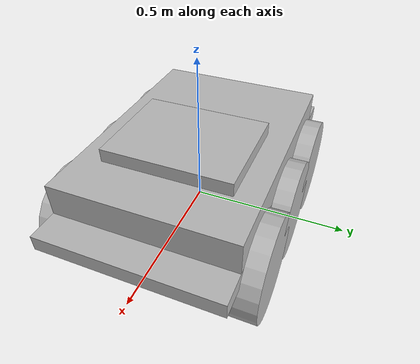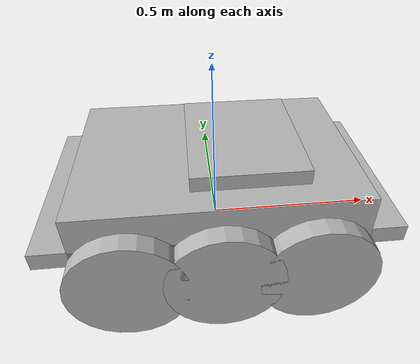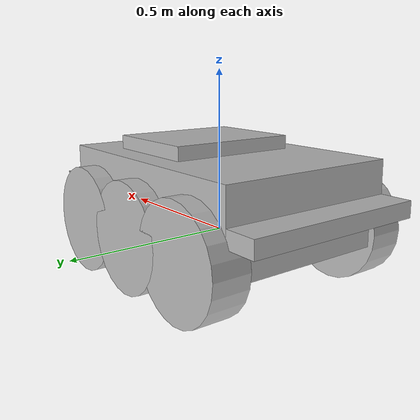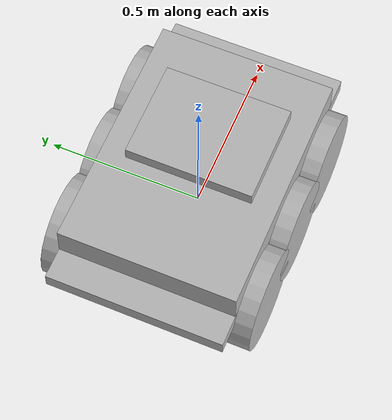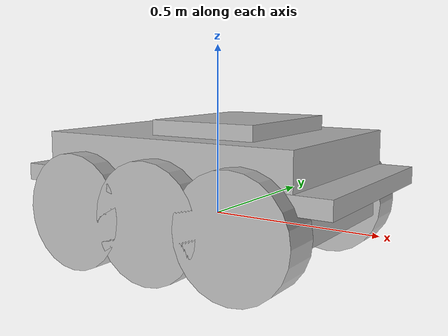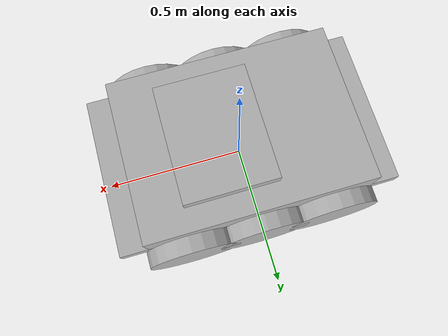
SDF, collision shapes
<?xml version="1.0"?>
<sdf version="1.6">
    <model name="X1">
        <static>0</static>
        <link name="base_link">
            <inertial>
                <pose frame="">0.0 0.0 0.062 0 0 0</pose>
                <mass>46.034</mass>
                <inertia>
                    <ixx>0.613201</ixx>
                    <ixy>-0.0236401</ixy>
                    <ixz>-0.1197</ixz>
                    <iyy>1.7496</iyy>
                    <iyz>-0.00154411</iyz>
                    <izz>2.0406</izz>
                </inertia>
            </inertial>
            <collision name="base_link_collision">
                <pose frame="">0 0 0.12 0 0 0</pose>
                <geometry>
                    <box>
                        <size>0.9874 0.5709 0.05</size>
                    </box>
                </geometry>
            </collision>
            <collision name="base_link_collision_bottom">
                <pose frame="">0 0 0.046 0 0 0</pose>
                <geometry>
                    <box>
                        <size>0.80 0.5709 0.095</size>
                    </box>
                </geometry>
            </collision>
            <collision name="base_link_collision_1">
                <pose frame="">0 0 0.185625 0 0 0</pose>
                <geometry>
                    <box>
                        <size>0.78992 0.5709 0.12375</size>
                    </box>
                </geometry>
            </collision>
            <collision name="top_plate_collision">
                <pose frame="">0.0812 0 0.245 0 0 0</pose>
                <geometry>
                    <box>
                        <size>0.32 0.41 0.09</size>
                    </box>
                </geometry>
            </collision>
            <visual name="base_link_visual">
                <pose frame="">0 0 0 0 0 -3.14159</pose>
                <geometry>
                    <mesh>
                        <uri>model://X1_Config_5/meshes/chassis.dae</uri>
                    </mesh>
                </geometry>
            </visual>
            <visual name="top_plate_visual">
                <pose frame="">0.0812 0 0.245 0 0 0</pose>
                <geometry>
                    <mesh>
                        <uri>model://X1_Config_5/meshes/top_plate.dae</uri>
                    </mesh>
                </geometry>
            </visual>
        </link>

        <!-- Mid drive wheels (left/right) -->
        <link name="mid_left_wheel">
            <pose frame="">0.0 0.2854 0.03282 0 0 0</pose>
            <inertial>
                <mass>2.637</mass>
                <inertia>
                    <ixx>0.02467</ixx>
                    <ixy>0</ixy>
                    <ixz>0</ixz>
                    <iyy>0.04411</iyy>
                    <iyz>0</iyz>
                    <izz>0.02467</izz>
                </inertia>
            </inertial>
            <collision name="collision">
                <pose frame="">0 0 0 -1.5707963267948966 0 0</pose>
                <geometry>
                    <cylinder>
                        <length>0.1143</length>
                        <radius>0.1651</radius>
                    </cylinder>
                </geometry>
                <surface>
                    <friction>
                        <ode>
                            <mu>0.5</mu>
                            <mu2>1</mu2>
                            <slip1>0.00062</slip1>
                            <slip2>0</slip2>
                            <fdir1>0 0 1</fdir1>
                        </ode>
                    </friction>
                </surface>
            </collision>
            <visual name="visual">
                <geometry>
                    <mesh>
                        <uri>model://X1_Config_5/meshes/wheel.dae</uri>
                    </mesh>
                </geometry>
            </visual>
        </link>
        <joint name="mid_left_wheel_joint" type="revolute">
            <parent>base_link</parent>
            <child>mid_left_wheel</child>
            <axis>
                <xyz>0 1 0</xyz>
                <limit>
                    <lower>-1.79769e+308</lower>
                    <upper>+1.79769e+308</upper>
                </limit>
            </axis>
        </joint>

        <link name="mid_right_wheel">
            <pose frame="">0.0 -0.2854 0.03282 0 0 0</pose>
            <inertial>
                <mass>2.637</mass>
                <inertia>
                    <ixx>0.02467</ixx>
                    <ixy>0</ixy>
                    <ixz>0</ixz>
                    <iyy>0.04411</iyy>
                    <iyz>0</iyz>
                    <izz>0.02467</izz>
                </inertia>
            </inertial>
            <collision name="collision">
                <pose frame="">0 0 0 -1.5707963267948966 0 0</pose>
                <geometry>
                    <cylinder>
                        <length>0.1143</length>
                        <radius>0.1651</radius>
                    </cylinder>
                </geometry>
                <surface>
                    <friction>
                        <ode>
                            <mu>0.5</mu>
                            <mu2>1</mu2>
                            <slip1>0.00062</slip1>
                            <slip2>0</slip2>
                            <fdir1>0 0 1</fdir1>
                        </ode>
                    </friction>
                </surface>
            </collision>
            <visual name="visual">
                <geometry>
                    <mesh>
                        <uri>model://X1_Config_5/meshes/wheel.dae</uri>
                    </mesh>
                </geometry>
            </visual>
        </link>
        <joint name="mid_right_wheel_joint" type="revolute">
            <parent>base_link</parent>
            <child>mid_right_wheel</child>
            <axis>
                <xyz>0 1 0</xyz>
                <limit>
                    <lower>-1.79769e+308</lower>
                    <upper>+1.79769e+308</upper>
                </limit>
            </axis>
        </joint>

        <link name="front_left_wheel">
            <pose frame="">0.256 0.2854 0.03282 0 0 0</pose>
            <inertial>
                <mass>2.637</mass>
                <inertia>
                    <ixx>0.02467</ixx>
                    <ixy>0</ixy>
                    <ixz>0</ixz>
                    <iyy>0.04411</iyy>
                    <iyz>0</iyz>
                    <izz>0.02467</izz>
                </inertia>
            </inertial>
            <collision name="collision">
                <pose frame="">0 0 0 -1.5707963267948966 0 0</pose>
                <geometry>
                    <cylinder>
                        <length>0.1143</length>
                        <radius>0.1651</radius>
                    </cylinder>
                </geometry>
                <surface>
                    <friction>
                        <ode>
                            <mu>0.5</mu>
                            <mu2>1</mu2>
                            <slip1>0.00062</slip1>
                            <slip2>0</slip2>
                            <fdir1>0 0 1</fdir1>
                        </ode>
                    </friction>
                </surface>
            </collision>
            <visual name="visual">
                <geometry>
                    <mesh>
                        <uri>model://X1_Config_5/meshes/wheel.dae</uri>
                    </mesh>
                </geometry>
            </visual>
        </link>
        <joint name="front_left_wheel_joint" type="revolute">
            <parent>base_link</parent>
            <child>front_left_wheel</child>
            <axis>
                <xyz>0 1 0</xyz>
                <limit>
                    <lower>-1.79769e+308</lower>
                    <upper>+1.79769e+308</upper>
                </limit>
            </axis>
        </joint>

        <link name="front_right_wheel">
            <pose frame="">0.256 -0.2854 0.03282 0 0 0</pose>
            <inertial>
                <mass>2.637</mass>
                <inertia>
                    <ixx>0.02467</ixx>
                    <ixy>0</ixy>
                    <ixz>0</ixz>
                    <iyy>0.04411</iyy>
                    <iyz>0</iyz>
                    <izz>0.02467</izz>
                </inertia>
            </inertial>
            <collision name="collision">
                <pose frame="">0 0 0 -1.5707963267948966 0 0</pose>
                <geometry>
                    <cylinder>
                        <length>0.1143</length>
                        <radius>0.1651</radius>
                    </cylinder>
                </geometry>
                <surface>
                    <friction>
                        <ode>
                            <mu>0.5</mu>
                            <mu2>1</mu2>
                            <slip1>0.00062</slip1>
                            <slip2>0</slip2>
                            <fdir1>0 0 1</fdir1>
                        </ode>
                    </friction>
                </surface>
            </collision>
            <visual name="visual">
                <geometry>
                    <mesh>
                        <uri>model://X1_Config_5/meshes/wheel.dae</uri>
                    </mesh>
                </geometry>
            </visual>
        </link>
        <joint name="front_right_wheel_joint" type="revolute">
            <child>front_right_wheel</child>
            <parent>base_link</parent>
            <axis>
                <xyz>0 1 0</xyz>
                <limit>
                    <lower>-1.79769e+308</lower>
                    <upper>+1.79769e+308</upper>
                </limit>
            </axis>
        </joint>

        <link name="rear_left_wheel">
            <pose frame="">-0.256 0.2854 0.03282 0 0 0</pose>
            <inertial>
                <mass>2.637</mass>
                <inertia>
                    <ixx>0.02467</ixx>
                    <ixy>0</ixy>
                    <ixz>0</ixz>
                    <iyy>0.04411</iyy>
                    <iyz>0</iyz>
                    <izz>0.02467</izz>
                </inertia>
            </inertial>
            <collision name="collision">
                <pose frame="">0 0 0 -1.5707963267948966 0 0</pose>
                <geometry>
                    <cylinder>
                        <length>0.1143</length>
                        <radius>0.1651</radius>
                    </cylinder>
                </geometry>
                <surface>
                    <friction>
                        <ode>
                            <mu>0.5</mu>
                            <mu2>1</mu2>
                            <slip1>0.00062</slip1>
                            <slip2>0</slip2>
                            <fdir1>0 0 1</fdir1>
                        </ode>
                    </friction>
                </surface>
            </collision>
            <visual name="visual">
                <geometry>
                    <mesh>
                        <uri>model://X1_Config_5/meshes/wheel.dae</uri>
                    </mesh>
                </geometry>
            </visual>
        </link>
        <joint name="rear_left_wheel_joint" type="revolute">
            <parent>base_link</parent>
            <child>rear_left_wheel</child>
            <axis>
                <xyz>0 1 0</xyz>
                <limit>
                    <lower>-1.79769e+308</lower>
                    <upper>+1.79769e+308</upper>
                </limit>
            </axis>
        </joint>

        <link name="rear_right_wheel">
            <pose frame="">-0.256 -0.2854 0.03282 0 0 0</pose>
            <inertial>
                <mass>2.637</mass>
                <inertia>
                    <ixx>0.02467</ixx>
                    <ixy>0</ixy>
                    <ixz>0</ixz>
                    <iyy>0.04411</iyy>
                    <iyz>0</iyz>
                    <izz>0.02467</izz>
                </inertia>
            </inertial>
            <collision name="collision">
                <pose frame="">0 0 0 -1.5707963267948966 0 0</pose>
                <geometry>
                    <cylinder>
                        <length>0.1143</length>
                        <radius>0.1651</radius>
                    </cylinder>
                </geometry>
                <surface>
                    <friction>
                        <ode>
                            <mu>0.5</mu>
                            <mu2>1</mu2>
                            <slip1>0.00062</slip1>
                            <slip2>0</slip2>
                            <fdir1>0 0 1</fdir1>
                        </ode>
                    </friction>
                </surface>
            </collision>
            <visual name="visual">
                <geometry>
                    <mesh>
                        <uri>model://X1_Config_5/meshes/wheel.dae</uri>
                    </mesh>
                </geometry>
            </visual>
        </link>
        <joint name="rear_right_wheel_joint" type="revolute">
            <child>rear_right_wheel</child>
            <parent>base_link</parent>
            <axis>
                <xyz>0 1 0</xyz>
                <limit>
                    <lower>-1.79769e+308</lower>
                    <upper>+1.79769e+308</upper>
                </limit>
            </axis>
        </joint>

        <!-- Differential drive plugin: cmd_vel → wheel movement -->
        <plugin filename="gz-sim-diff-drive-system" name="gz::sim::systems::DiffDrive">
            <left_joint>mid_left_wheel_joint</left_joint>
            <right_joint>mid_right_wheel_joint</right_joint>
            <wheel_separation>0.5708</wheel_separation>
            <wheel_radius>0.1651</wheel_radius>
            <frame_id>odom</frame_id>
            <child_frame_id>base_link</child_frame_id>
        </plugin>
    </model>
</sdf>
